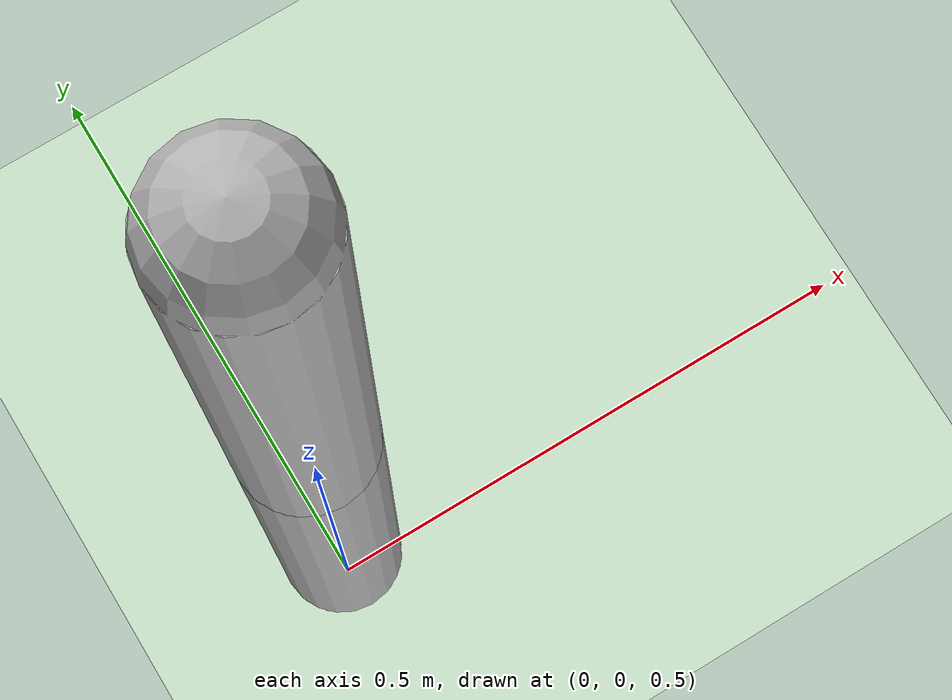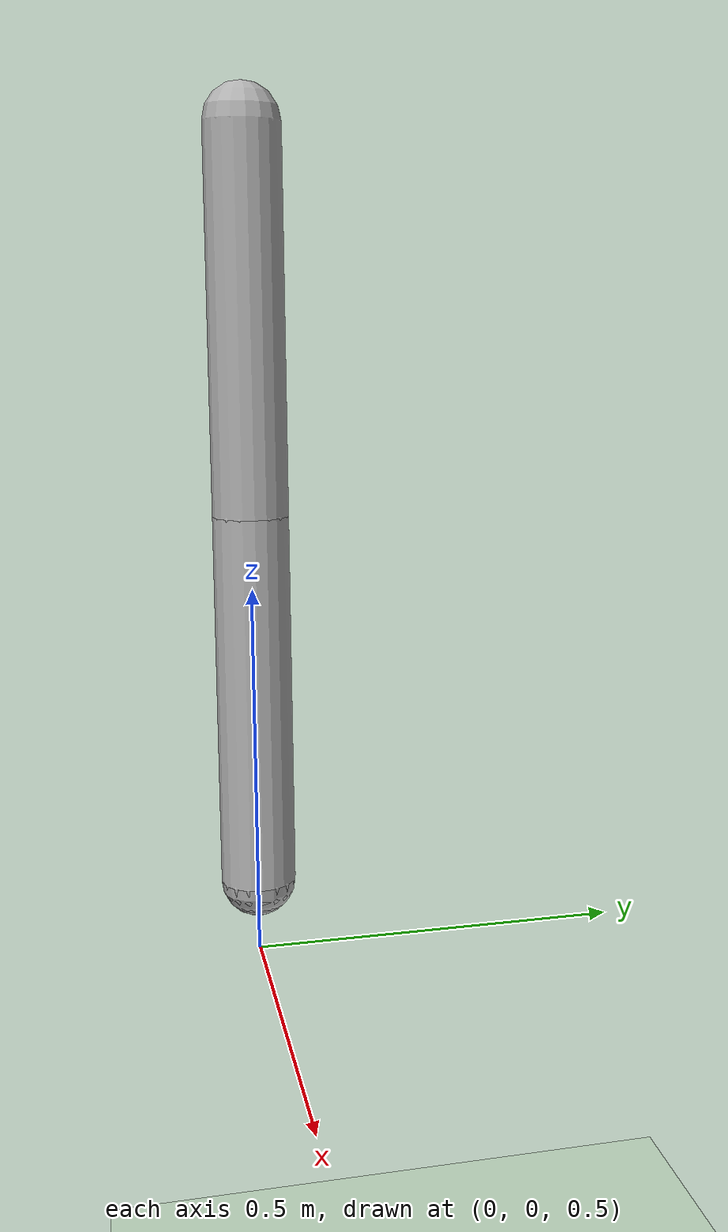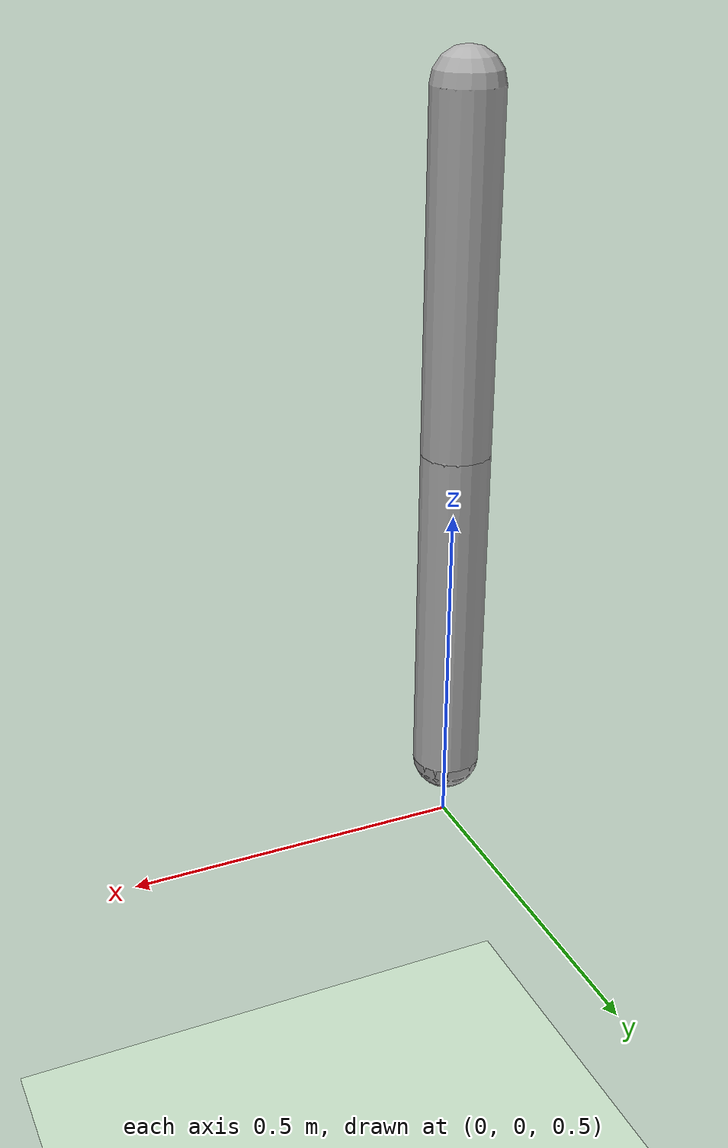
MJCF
<mujoco model="simple_leg">
  <compiler angle="degree"/>
  <option gravity="0 0 -9.81" timestep="0.002"/>

  <default>
    <geom rgba="0.7 0.7 0.7 1" contype="1" conaffinity="1"/>
    <joint damping="0.2"/>
  </default>

  <worldbody>
    <light diffuse="1 1 1" pos="0 0 3" dir="0 0 -1"/>
    <geom name="floor" type="plane" size="5 5 0.1" solref="0.02 1" rgba="0.8 0.9 0.8 1"/>

    <body name="base" pos="0 0 1.6">
      <freejoint/>
      <geom name="base_geom" type="sphere" size="0.02"/>

      <body name="thigh" pos="0 0 0">
        <joint name="hip_joint" type="hinge" axis="0 1 0" pos="0 0 0"/>
        <geom name="thigh_geom" type="capsule" fromto="0 0 0 0 0 -0.5" size="0.05"/>

        <body name="shin" pos="0 0 -0.5">
          <joint name="knee_joint" type="hinge" axis="0 1 0" pos="0 0 0"/>
          <geom name="shin_geom" type="capsule" fromto="0 0 0 0 0 -0.5" size="0.05"/>

          <body name="foot" pos="0 0 -0.5">
            <geom name="foot_geom" type="sphere" size="0.05"/>
          </body>
        </body>
      </body>
    </body>
  </worldbody>
</mujoco>
